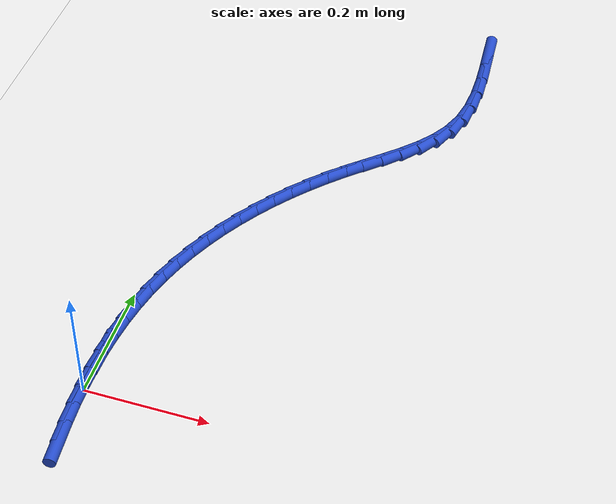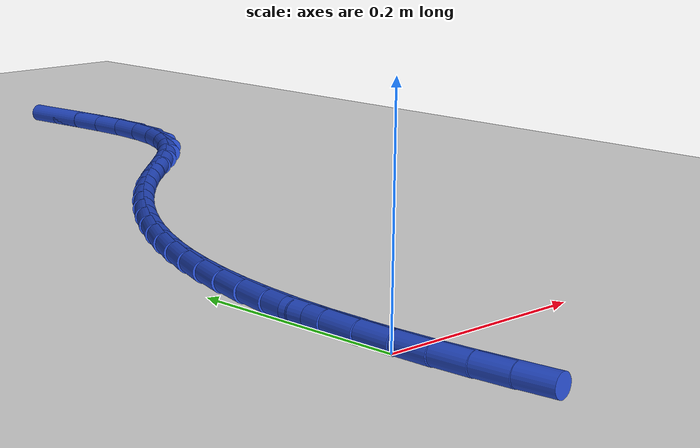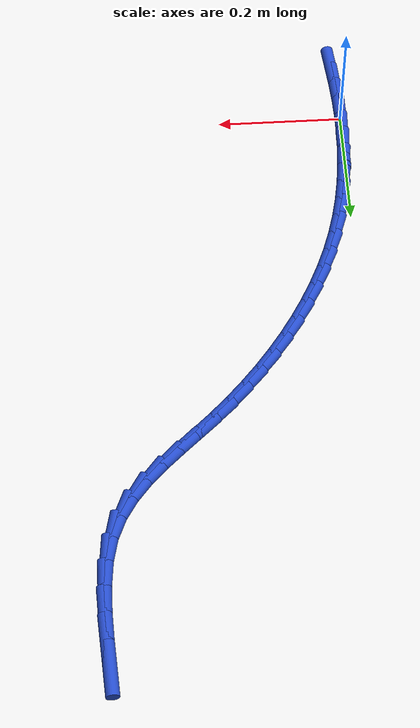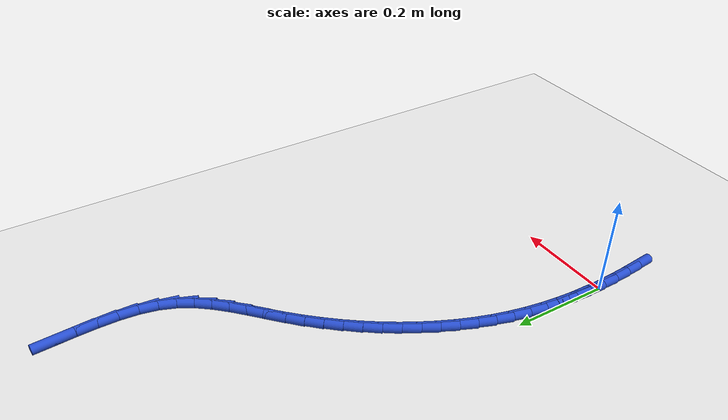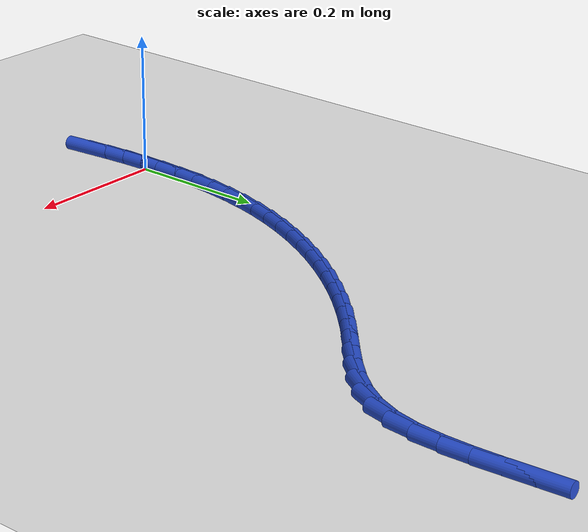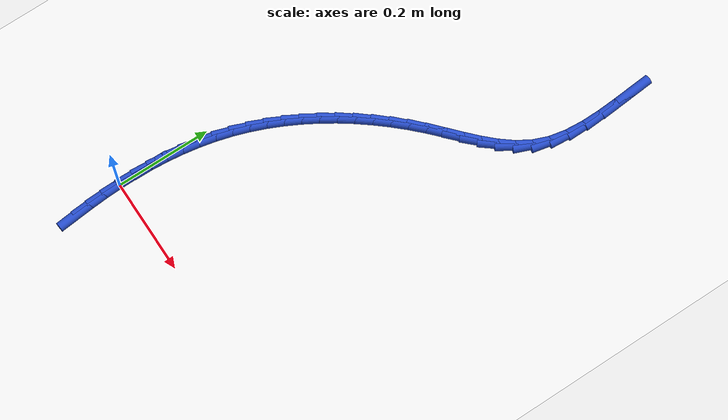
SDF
<sdf version="1.6">
 <world name="default">
  <model name="ground_plane">
   <static>1</static>
   <link name="link">
    <collision name="collision">
     <geometry><plane><normal>0 0 1</normal><size>100 100</size></plane></geometry>
     <surface><friction><ode><mu>100</mu><mu2>50</mu2></ode></friction></surface>
    </collision>
    <visual name="visual">
     <cast_shadows>0</cast_shadows>
     <geometry><plane><normal>0 0 1</normal><size>100 100</size></plane></geometry>
     <material>
      <script><uri>file://media/materials/scripts/gazebo.material</uri><name>Gazebo/WhiteGlow</name></script>
     </material>
    </visual>
   </link>
  </model>
  <model name="line">
   <link name="link_0">
    <pose>-8.673617379884035e-19 2.0816681711721685e-17 0.01 0 1.57 -1.569305011029493</pose>
    <collision name="collision">
     <geometry><cylinder><radius>0.01</radius><length>0.08</length></cylinder></geometry>
    </collision>
    <visual name="visual">
     <material>
      <script><name>Gazebo/Blue</name><uri>file://media/materials/scripts/gazebo.material</uri></script>
     </material>
     <geometry><cylinder><radius>0.01</radius><length>0.08</length></cylinder></geometry>
    </visual>
   </link>
   <link name="link_1">
    <pose>-5.165638425430541e-05 0.03463810090234843 0.01 0 1.57 1.535135308281151</pose>
    <collision name="collision">
     <geometry><cylinder><radius>0.01</radius><length>0.08</length></cylinder></geometry>
    </collision>
    <visual name="visual">
     <material>
      <script><name>Gazebo/Blue</name><uri>file://media/materials/scripts/gazebo.material</uri></script>
     </material>
     <geometry><cylinder><radius>0.01</radius><length>0.08</length></cylinder></geometry>
    </visual>
   </link>
   <link name="link_2">
    <pose>0.001184699253228354 0.06929307010959967 0.01 0 1.57 1.4949237692335338</pose>
    <collision name="collision">
     <geometry><cylinder><radius>0.01</radius><length>0.08</length></cylinder></geometry>
    </collision>
    <visual name="visual">
     <material>
      <script><name>Gazebo/Blue</name><uri>file://media/materials/scripts/gazebo.material</uri></script>
     </material>
     <geometry><cylinder><radius>0.01</radius><length>0.08</length></cylinder></geometry>
    </visual>
   </link>
   <link name="link_3">
    <pose>0.0038124446649180884 0.10386026050504642 0.01 0 1.57 1.4514379151245504</pose>
    <collision name="collision">
     <geometry><cylinder><radius>0.01</radius><length>0.08</length></cylinder></geometry>
    </collision>
    <visual name="visual">
     <material>
      <script><name>Gazebo/Blue</name><uri>file://media/materials/scripts/gazebo.material</uri></script>
     </material>
     <geometry><cylinder><radius>0.01</radius><length>0.08</length></cylinder></geometry>
    </visual>
   </link>
   <link name="link_4">
    <pose>0.00793495760328501 0.13823502497198148 0.01 0 1.57 1.4044760355454056</pose>
    <collision name="collision">
     <geometry><cylinder><radius>0.01</radius><length>0.08</length></cylinder></geometry>
    </collision>
    <visual name="visual">
     <material>
      <script><name>Gazebo/Blue</name><uri>file://media/materials/scripts/gazebo.material</uri></script>
     </material>
     <geometry><cylinder><radius>0.01</radius><length>0.08</length></cylinder></geometry>
    </visual>
   </link>
   <link name="link_5">
    <pose>0.013655615820799228 0.17231271639369744 0.01 0 1.57 1.3538645998554175</pose>
    <collision name="collision">
     <geometry><cylinder><radius>0.01</radius><length>0.08</length></cylinder></geometry>
    </collision>
    <visual name="visual">
     <material>
      <script><name>Gazebo/Blue</name><uri>file://media/materials/scripts/gazebo.material</uri></script>
     </material>
     <geometry><cylinder><radius>0.01</radius><length>0.08</length></cylinder></geometry>
    </visual>
   </link>
   <link name="link_6">
    <pose>0.02107779706993085 0.2059886876534871 0.01 0 1.57 1.299825069877544</pose>
    <collision name="collision">
     <geometry><cylinder><radius>0.01</radius><length>0.08</length></cylinder></geometry>
    </collision>
    <visual name="visual">
     <material>
      <script><name>Gazebo/Blue</name><uri>file://media/materials/scripts/gazebo.material</uri></script>
     </material>
     <geometry><cylinder><radius>0.01</radius><length>0.08</length></cylinder></geometry>
    </visual>
   </link>
   <link name="link_7">
    <pose>0.03029375550164529 0.2391629982604923 0.01 0 1.57 1.2455566045314033</pose>
    <collision name="collision">
     <geometry><cylinder><radius>0.01</radius><length>0.08</length></cylinder></geometry>
    </collision>
    <visual name="visual">
     <material>
      <script><name>Gazebo/Blue</name><uri>file://media/materials/scripts/gazebo.material</uri></script>
     </material>
     <geometry><cylinder><radius>0.01</radius><length>0.08</length></cylinder></geometry>
    </visual>
   </link>
   <link name="link_8">
    <pose>0.041292485809758965 0.27177939893573383 0.01 0 1.57 1.1928743153756909</pose>
    <collision name="collision">
     <geometry><cylinder><radius>0.01</radius><length>0.08</length></cylinder></geometry>
    </collision>
    <visual name="visual">
     <material>
      <script><name>Gazebo/Blue</name><uri>file://media/materials/scripts/gazebo.material</uri></script>
     </material>
     <geometry><cylinder><radius>0.01</radius><length>0.08</length></cylinder></geometry>
    </visual>
   </link>
   <link name="link_9">
    <pose>0.054006954551075646 0.3038053470637475 0.01 0 1.57 1.1418372290191672</pose>
    <collision name="collision">
     <geometry><cylinder><radius>0.01</radius><length>0.08</length></cylinder></geometry>
    </collision>
    <visual name="visual">
     <material>
      <script><name>Gazebo/Blue</name><uri>file://media/materials/scripts/gazebo.material</uri></script>
     </material>
     <geometry><cylinder><radius>0.01</radius><length>0.08</length></cylinder></geometry>
    </visual>
   </link>
   <link name="link_10">
    <pose>0.06836957270695226 0.3352085351045307 0.01 0 1.57 1.0924513615860467</pose>
    <collision name="collision">
     <geometry><cylinder><radius>0.01</radius><length>0.08</length></cylinder></geometry>
    </collision>
    <visual name="visual">
     <material>
      <script><name>Gazebo/Blue</name><uri>file://media/materials/scripts/gazebo.material</uri></script>
     </material>
     <geometry><cylinder><radius>0.01</radius><length>0.08</length></cylinder></geometry>
    </visual>
   </link>
   <link name="link_11">
    <pose>0.08431275125874577 0.36595665551808104 0.01 0 1.57 1.0446920026521926</pose>
    <collision name="collision">
     <geometry><cylinder><radius>0.01</radius><length>0.08</length></cylinder></geometry>
    </collision>
    <visual name="visual">
     <material>
      <script><name>Gazebo/Blue</name><uri>file://media/materials/scripts/gazebo.material</uri></script>
     </material>
     <geometry><cylinder><radius>0.01</radius><length>0.08</length></cylinder></geometry>
    </visual>
   </link>
   <link name="link_12">
    <pose>0.10176890118781307 0.3960174007643959 0.01 0 1.57 0.9985087698773133</pose>
    <collision name="collision">
     <geometry><cylinder><radius>0.01</radius><length>0.08</length></cylinder></geometry>
    </collision>
    <visual name="visual">
     <material>
      <script><name>Gazebo/Blue</name><uri>file://media/materials/scripts/gazebo.material</uri></script>
     </material>
     <geometry><cylinder><radius>0.01</radius><length>0.08</length></cylinder></geometry>
    </visual>
   </link>
   <link name="link_13">
    <pose>0.12067043347551111 0.4253584633034729 0.01 0 1.57 0.9538304640090942</pose>
    <collision name="collision">
     <geometry><cylinder><radius>0.01</radius><length>0.08</length></cylinder></geometry>
    </collision>
    <visual name="visual">
     <material>
      <script><name>Gazebo/Blue</name><uri>file://media/materials/scripts/gazebo.material</uri></script>
     </material>
     <geometry><cylinder><radius>0.01</radius><length>0.08</length></cylinder></geometry>
    </visual>
   </link>
   <link name="link_14">
    <pose>0.1409497591031969 0.45394753559530965 0.01 0 1.57 0.9105694924464799</pose>
    <collision name="collision">
     <geometry><cylinder><radius>0.01</radius><length>0.08</length></cylinder></geometry>
    </collision>
    <visual name="visual">
     <material>
      <script><name>Gazebo/Blue</name><uri>file://media/materials/scripts/gazebo.material</uri></script>
     </material>
     <geometry><cylinder><radius>0.01</radius><length>0.08</length></cylinder></geometry>
    </visual>
   </link>
   <link name="link_15">
    <pose>0.16253928905222723 0.48175231009990327 0.01 0 1.57 0.868625728667463</pose>
    <collision name="collision">
     <geometry><cylinder><radius>0.01</radius><length>0.08</length></cylinder></geometry>
    </collision>
    <visual name="visual">
     <material>
      <script><name>Gazebo/Blue</name><uri>file://media/materials/scripts/gazebo.material</uri></script>
     </material>
     <geometry><cylinder><radius>0.01</radius><length>0.08</length></cylinder></geometry>
    </visual>
   </link>
   <link name="link_16">
    <pose>0.18537143430395914 0.5087404792772516 0.01 0 1.57 0.8278897530611945</pose>
    <collision name="collision">
     <geometry><cylinder><radius>0.01</radius><length>0.08</length></cylinder></geometry>
    </collision>
    <visual name="visual">
     <material>
      <script><name>Gazebo/Blue</name><uri>file://media/materials/scripts/gazebo.material</uri></script>
     </material>
     <geometry><cylinder><radius>0.01</radius><length>0.08</length></cylinder></geometry>
    </visual>
   </link>
   <link name="link_17">
    <pose>0.2093786058397495 0.534879735587352 0.01 0 1.57 0.7882454769520455</pose>
    <collision name="collision">
     <geometry><cylinder><radius>0.01</radius><length>0.08</length></cylinder></geometry>
    </collision>
    <visual name="visual">
     <material>
      <script><name>Gazebo/Blue</name><uri>file://media/materials/scripts/gazebo.material</uri></script>
     </material>
     <geometry><cylinder><radius>0.01</radius><length>0.08</length></cylinder></geometry>
    </visual>
   </link>
   <link name="link_18">
    <pose>0.2344932146409553 0.5601377714902019 0.01 0 1.57 0.7511786405013481</pose>
    <collision name="collision">
     <geometry><cylinder><radius>0.01</radius><length>0.08</length></cylinder></geometry>
    </collision>
    <visual name="visual">
     <material>
      <script><name>Gazebo/Blue</name><uri>file://media/materials/scripts/gazebo.material</uri></script>
     </material>
     <geometry><cylinder><radius>0.01</radius><length>0.08</length></cylinder></geometry>
    </visual>
   </link>
   <link name="link_19">
    <pose>0.2606018262244585 0.584518004226917 0.01 0 1.57 0.7355004092096742</pose>
    <collision name="collision">
     <geometry><cylinder><radius>0.01</radius><length>0.08</length></cylinder></geometry>
    </collision>
    <visual name="visual">
     <material>
      <script><name>Gazebo/Blue</name><uri>file://media/materials/scripts/gazebo.material</uri></script>
     </material>
     <geometry><cylinder><radius>0.01</radius><length>0.08</length></cylinder></geometry>
    </visual>
   </link>
   <link name="link_20">
    <pose>0.28704715299012945 0.608447645055929 0.01 0 1.57 0.7536811572723947</pose>
    <collision name="collision">
     <geometry><cylinder><radius>0.01</radius><length>0.08</length></cylinder></geometry>
    </collision>
    <visual name="visual">
     <material>
      <script><name>Gazebo/Blue</name><uri>file://media/materials/scripts/gazebo.material</uri></script>
     </material>
     <geometry><cylinder><radius>0.01</radius><length>0.08</length></cylinder></geometry>
    </visual>
   </link>
   <link name="link_21">
    <pose>0.31281578849473135 0.6326314085365454 0.01 0 1.57 0.8072365346144506</pose>
    <collision name="collision">
     <geometry><cylinder><radius>0.01</radius><length>0.08</length></cylinder></geometry>
    </collision>
    <visual name="visual">
     <material>
      <script><name>Gazebo/Blue</name><uri>file://media/materials/scripts/gazebo.material</uri></script>
     </material>
     <geometry><cylinder><radius>0.01</radius><length>0.08</length></cylinder></geometry>
    </visual>
   </link>
   <link name="link_22">
    <pose>0.3368881507835388 0.6577788214553848 0.01 0 1.57 0.8983321688613249</pose>
    <collision name="collision">
     <geometry><cylinder><radius>0.01</radius><length>0.08</length></cylinder></geometry>
    </collision>
    <visual name="visual">
     <material>
      <script><name>Gazebo/Blue</name><uri>file://media/materials/scripts/gazebo.material</uri></script>
     </material>
     <geometry><cylinder><radius>0.01</radius><length>0.08</length></cylinder></geometry>
    </visual>
   </link>
   <link name="link_23">
    <pose>0.3582446579018264 0.6845994105990653 0.01 0 1.57 1.0278855086694925</pose>
    <collision name="collision">
     <geometry><cylinder><radius>0.01</radius><length>0.08</length></cylinder></geometry>
    </collision>
    <visual name="visual">
     <material>
      <script><name>Gazebo/Blue</name><uri>file://media/materials/scripts/gazebo.material</uri></script>
     </material>
     <geometry><cylinder><radius>0.01</radius><length>0.08</length></cylinder></geometry>
    </visual>
   </link>
   <link name="link_24">
    <pose>0.3758657278948691 0.7138027027542058 0.01 0 1.57 1.191670472003382</pose>
    <collision name="collision">
     <geometry><cylinder><radius>0.01</radius><length>0.08</length></cylinder></geometry>
    </collision>
    <visual name="visual">
     <material>
      <script><name>Gazebo/Blue</name><uri>file://media/materials/scripts/gazebo.material</uri></script>
     </material>
     <geometry><cylinder><radius>0.01</radius><length>0.08</length></cylinder></geometry>
    </visual>
   </link>
   <link name="link_25">
    <pose>0.38873213377500665 0.7460979406390422 0.01 0 1.57 1.3618860238097712</pose>
    <collision name="collision">
     <geometry><cylinder><radius>0.01</radius><length>0.08</length></cylinder></geometry>
    </collision>
    <visual name="visual">
     <material>
      <script><name>Gazebo/Blue</name><uri>file://media/materials/scripts/gazebo.material</uri></script>
     </material>
     <geometry><cylinder><radius>0.01</radius><length>0.08</length></cylinder></geometry>
    </visual>
   </link>
   <link name="link_26">
    <pose>0.3963034667434989 0.7818111846388585 0.01 0 1.57 1.4884840408029265</pose>
    <collision name="collision">
     <geometry><cylinder><radius>0.01</radius><length>0.08</length></cylinder></geometry>
    </collision>
    <visual name="visual">
     <material>
      <script><name>Gazebo/Blue</name><uri>file://media/materials/scripts/gazebo.material</uri></script>
     </material>
     <geometry><cylinder><radius>0.01</radius><length>0.08</length></cylinder></geometry>
    </visual>
   </link>
   <link name="link_27">
    <pose>0.3994645480395753 0.8201279307585918 0.01 0 1.57 -1.568280550347962</pose>
    <collision name="collision">
     <geometry><cylinder><radius>0.01</radius><length>0.08</length></cylinder></geometry>
    </collision>
    <visual name="visual">
     <material>
      <script><name>Gazebo/Blue</name><uri>file://media/materials/scripts/gazebo.material</uri></script>
     </material>
     <geometry><cylinder><radius>0.01</radius><length>0.08</length></cylinder></geometry>
    </visual>
   </link>
   <link name="link_28">
    <pose>0.39936418221671255 0.860022417902772 0.01 0 1.57 -1.5161363240205563</pose>
    <collision name="collision">
     <geometry><cylinder><radius>0.01</radius><length>0.08</length></cylinder></geometry>
    </collision>
    <visual name="visual">
     <material>
      <script><name>Gazebo/Blue</name><uri>file://media/materials/scripts/gazebo.material</uri></script>
     </material>
     <geometry><cylinder><radius>0.01</radius><length>0.08</length></cylinder></geometry>
    </visual>
   </link>
   <link name="link_29">
    <pose>0.3971511738283869 0.9004688849759277 0.01 0 1.57 -1.4914875968822228</pose>
    <collision name="collision">
     <geometry><cylinder><radius>0.01</radius><length>0.08</length></cylinder></geometry>
    </collision>
    <visual name="visual">
     <material>
      <script><name>Gazebo/Blue</name><uri>file://media/materials/scripts/gazebo.material</uri></script>
     </material>
     <geometry><cylinder><radius>0.01</radius><length>0.08</length></cylinder></geometry>
    </visual>
   </link>
   <link name="link_30">
    <pose>0.39397432742807487 0.9404415708825893 0.01 0 1.57 -1.4931871096889804</pose>
    <collision name="collision">
     <geometry><cylinder><radius>0.01</radius><length>0.08</length></cylinder></geometry>
    </collision>
    <visual name="visual">
     <material>
      <script><name>Gazebo/Blue</name><uri>file://media/materials/scripts/gazebo.material</uri></script>
     </material>
     <geometry><cylinder><radius>0.01</radius><length>0.08</length></cylinder></geometry>
    </visual>
   </link>
   <link name="link_287">
    <pose>0.0068711919127425304 -0.10328996481844548 0.01 0 1.57 -1.4746457185442472</pose>
    <collision name="collision">
     <geometry><cylinder><radius>0.01</radius><length>0.08</length></cylinder></geometry>
    </collision>
    <visual name="visual">
     <material>
      <script><name>Gazebo/Blue</name><uri>file://media/materials/scripts/gazebo.material</uri></script>
     </material>
     <geometry><cylinder><radius>0.01</radius><length>0.08</length></cylinder></geometry>
    </visual>
   </link>
   <link name="link_288">
    <pose>0.0035603350547306037 -0.06896207304771931 0.01 0 1.57 -1.5034138829401218</pose>
    <collision name="collision">
     <geometry><cylinder><radius>0.01</radius><length>0.08</length></cylinder></geometry>
    </collision>
    <visual name="visual">
     <material>
      <script><name>Gazebo/Blue</name><uri>file://media/materials/scripts/gazebo.material</uri></script>
     </material>
     <geometry><cylinder><radius>0.01</radius><length>0.08</length></cylinder></geometry>
    </visual>
   </link>
   <link name="link_289">
    <pose>0.001237102807382609 -0.0345359685588084 0.01 0 1.57 -1.5349909288983408</pose>
    <collision name="collision">
     <geometry><cylinder><radius>0.01</radius><length>0.08</length></cylinder></geometry>
    </collision>
    <visual name="visual">
     <material>
      <script><name>Gazebo/Blue</name><uri>file://media/materials/scripts/gazebo.material</uri></script>
     </material>
     <geometry><cylinder><radius>0.01</radius><length>0.08</length></cylinder></geometry>
    </visual>
   </link>
   <link name="link_290">
    <pose>5.637851296924623e-18 -4.85722573273506e-17 0.01 0 1.57 -1.5692824114148738</pose>
    <collision name="collision">
     <geometry><cylinder><radius>0.01</radius><length>0.08</length></cylinder></geometry>
    </collision>
    <visual name="visual">
     <material>
      <script><name>Gazebo/Blue</name><uri>file://media/materials/scripts/gazebo.material</uri></script>
     </material>
     <geometry><cylinder><radius>0.01</radius><length>0.08</length></cylinder></geometry>
    </visual>
   </link>
   <link name="link_291">
    <pose>-5.2468538115759376e-05 0.034657483980417327 0.01 0 1.57 1.5354374700444813</pose>
    <collision name="collision">
     <geometry><cylinder><radius>0.01</radius><length>0.08</length></cylinder></geometry>
    </collision>
    <visual name="visual">
     <material>
      <script><name>Gazebo/Blue</name><uri>file://media/materials/scripts/gazebo.material</uri></script>
     </material>
     <geometry><cylinder><radius>0.01</radius><length>0.08</length></cylinder></geometry>
    </visual>
   </link>
   <link name="link_292">
    <pose>0.001178202022336837 0.06944813473415971 0.01 0 1.57 1.5538327465584982</pose>
    <collision name="collision">
     <geometry><cylinder><radius>0.01</radius><length>0.08</length></cylinder></geometry>
    </collision>
    <visual name="visual">
     <material>
      <script><name>Gazebo/Blue</name><uri>file://media/materials/scripts/gazebo.material</uri></script>
     </material>
     <geometry><cylinder><radius>0.01</radius><length>0.08</length></cylinder></geometry>
    </visual>
   </link>
  </model>
 </world>
</sdf>
